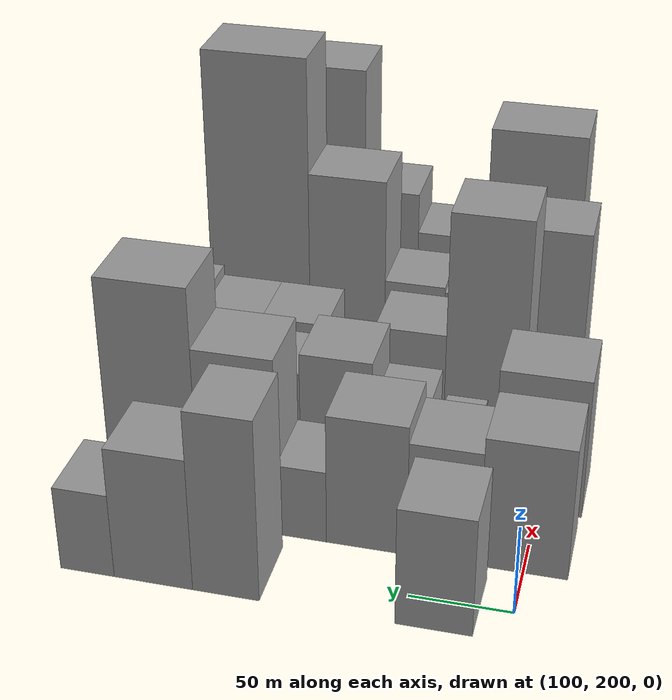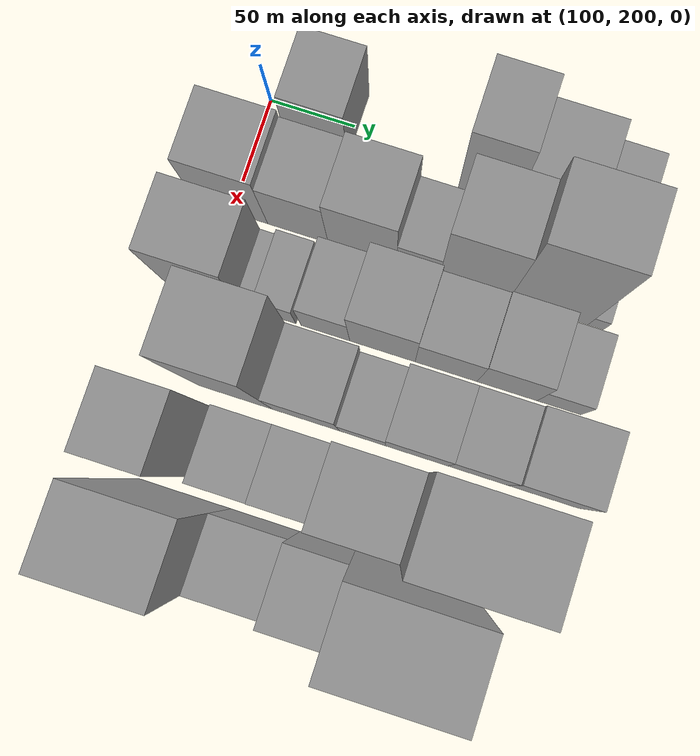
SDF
<sdf version="1.6">
 <world name="default">
  <model name="building_26">
   <static>1</static>
   <pose>100.0000 234.2118 0 0.000000 0.000000 0.000000</pose>
   <link name="link">
    <pose>0 0 33.00 0 0 0</pose>
    <collision name="collision"><geometry><box><size>40.0000 36.1460 66.0000</size></box></geometry></collision>
    <visual name="visual">
     <cast_shadows>0</cast_shadows>
     <geometry><box><size>40.0000 36.1460 66.0000</size></box></geometry>
     <material>
      <script>
       <uri>model://grey_wall/materials/scripts</uri>
       <uri>model://grey_wall/materials/textures</uri>
       <name>vrc/grey_wall</name>
      </script>
     </material>
    </visual>
   </link>
  </model>
  <model name="building_27">
   <static>1</static>
   <pose>100.0000 333.4423 0 0.000000 0.000000 0.000000</pose>
   <link name="link">
    <pose>0 0 51.00 0 0 0</pose>
    <collision name="collision"><geometry><box><size>40.0000 32.7717 102.0000</size></box></geometry></collision>
    <visual name="visual">
     <cast_shadows>0</cast_shadows>
     <geometry><box><size>40.0000 32.7717 102.0000</size></box></geometry>
     <material>
      <script>
       <uri>model://grey_wall/materials/scripts</uri>
       <uri>model://grey_wall/materials/textures</uri>
       <name>vrc/grey_wall</name>
      </script>
     </material>
    </visual>
   </link>
  </model>
  <model name="building_28">
   <static>1</static>
   <pose>100.0000 369.4874 0 0.000000 0.000000 0.000000</pose>
   <link name="link">
    <pose>0 0 37.50 0 0 0</pose>
    <collision name="collision"><geometry><box><size>40.0000 39.3185 75.0000</size></box></geometry></collision>
    <visual name="visual">
     <cast_shadows>0</cast_shadows>
     <geometry><box><size>40.0000 39.3185 75.0000</size></box></geometry>
     <material>
      <script>
       <uri>model://grey_wall/materials/scripts</uri>
       <uri>model://grey_wall/materials/textures</uri>
       <name>vrc/grey_wall</name>
      </script>
     </material>
    </visual>
   </link>
  </model>
  <model name="building_29">
   <static>1</static>
   <pose>100.0000 402.8128 0 0.000000 0.000000 0.000000</pose>
   <link name="link">
    <pose>0 0 24.00 0 0 0</pose>
    <collision name="collision"><geometry><box><size>40.0000 27.3323 48.0000</size></box></geometry></collision>
    <visual name="visual">
     <cast_shadows>0</cast_shadows>
     <geometry><box><size>40.0000 27.3323 48.0000</size></box></geometry>
     <material>
      <script>
       <uri>model://grey_wall/materials/scripts</uri>
       <uri>model://grey_wall/materials/textures</uri>
       <name>vrc/grey_wall</name>
      </script>
     </material>
    </visual>
   </link>
  </model>
  <model name="building_69">
   <static>1</static>
   <pose>149.0000 200.0035 0 0.000000 0.000000 0.000000</pose>
   <link name="link">
    <pose>0 0 37.50 0 0 0</pose>
    <collision name="collision"><geometry><box><size>40.0000 42.6982 75.0000</size></box></geometry></collision>
    <visual name="visual">
     <cast_shadows>0</cast_shadows>
     <geometry><box><size>40.0000 42.6982 75.0000</size></box></geometry>
     <material>
      <script>
       <uri>model://grey_wall/materials/scripts</uri>
       <uri>model://grey_wall/materials/textures</uri>
       <name>vrc/grey_wall</name>
      </script>
     </material>
    </visual>
   </link>
  </model>
  <model name="building_70">
   <static>1</static>
   <pose>149.0000 239.1743 0 0.000000 0.000000 0.000000</pose>
   <link name="link">
    <pose>0 0 33.00 0 0 0</pose>
    <collision name="collision"><geometry><box><size>40.0000 35.6436 66.0000</size></box></geometry></collision>
    <visual name="visual">
     <cast_shadows>0</cast_shadows>
     <geometry><box><size>40.0000 35.6436 66.0000</size></box></geometry>
     <material>
      <script>
       <uri>model://grey_wall/materials/scripts</uri>
       <uri>model://grey_wall/materials/textures</uri>
       <name>vrc/grey_wall</name>
      </script>
     </material>
    </visual>
   </link>
  </model>
  <model name="building_71">
   <static>1</static>
   <pose>149.0000 277.1224 0 0.000000 0.000000 0.000000</pose>
   <link name="link">
    <pose>0 0 37.50 0 0 0</pose>
    <collision name="collision"><geometry><box><size>40.0000 40.2526 75.0000</size></box></geometry></collision>
    <visual name="visual">
     <cast_shadows>0</cast_shadows>
     <geometry><box><size>40.0000 40.2526 75.0000</size></box></geometry>
     <material>
      <script>
       <uri>model://grey_wall/materials/scripts</uri>
       <uri>model://grey_wall/materials/textures</uri>
       <name>vrc/grey_wall</name>
      </script>
     </material>
    </visual>
   </link>
  </model>
  <model name="building_72">
   <static>1</static>
   <pose>149.0000 309.7122 0 0.000000 0.000000 0.000000</pose>
   <link name="link">
    <pose>0 0 21.00 0 0 0</pose>
    <collision name="collision"><geometry><box><size>40.0000 24.9270 42.0000</size></box></geometry></collision>
    <visual name="visual">
     <cast_shadows>0</cast_shadows>
     <geometry><box><size>40.0000 24.9270 42.0000</size></box></geometry>
     <material>
      <script>
       <uri>model://grey_wall/materials/scripts</uri>
       <uri>model://grey_wall/materials/textures</uri>
       <name>vrc/grey_wall</name>
      </script>
     </material>
    </visual>
   </link>
  </model>
  <model name="building_73">
   <static>1</static>
   <pose>149.0000 342.3925 0 0.000000 0.000000 0.000000</pose>
   <link name="link">
    <pose>0 0 51.00 0 0 0</pose>
    <collision name="collision"><geometry><box><size>40.0000 40.4336 102.0000</size></box></geometry></collision>
    <visual name="visual">
     <cast_shadows>0</cast_shadows>
     <geometry><box><size>40.0000 40.4336 102.0000</size></box></geometry>
     <material>
      <script>
       <uri>model://grey_wall/materials/scripts</uri>
       <uri>model://grey_wall/materials/textures</uri>
       <name>vrc/grey_wall</name>
      </script>
     </material>
    </visual>
   </link>
  </model>
  <model name="building_74">
   <static>1</static>
   <pose>149.0000 385.5866 0 0.000000 0.000000 0.000000</pose>
   <link name="link">
    <pose>0 0 67.50 0 0 0</pose>
    <collision name="collision"><geometry><box><size>40.0000 45.9545 135.0000</size></box></geometry></collision>
    <visual name="visual">
     <cast_shadows>0</cast_shadows>
     <geometry><box><size>40.0000 45.9545 135.0000</size></box></geometry>
     <material>
      <script>
       <uri>model://grey_wall/materials/scripts</uri>
       <uri>model://grey_wall/materials/textures</uri>
       <name>vrc/grey_wall</name>
      </script>
     </material>
    </visual>
   </link>
  </model>
  <model name="building_75">
   <static>1</static>
   <pose>149.0000 413.0706 0 0.000000 0.000000 0.000000</pose>
   <link name="link">
    <pose>0 0 10.50 0 0 0</pose>
    <collision name="collision"><geometry><box><size>40.0000 9.0136 21.0000</size></box></geometry></collision>
    <visual name="visual">
     <cast_shadows>0</cast_shadows>
     <geometry><box><size>40.0000 9.0136 21.0000</size></box></geometry>
     <material>
      <script>
       <uri>model://grey_wall/materials/scripts</uri>
       <uri>model://grey_wall/materials/textures</uri>
       <name>vrc/grey_wall</name>
      </script>
     </material>
    </visual>
   </link>
  </model>
  <model name="building_114">
   <static>1</static>
   <pose>198.0000 200.1584 0 0.000000 0.000000 0.000000</pose>
   <link name="link">
    <pose>0 0 40.50 0 0 0</pose>
    <collision name="collision"><geometry><box><size>40.0000 45.1480 81.0000</size></box></geometry></collision>
    <visual name="visual">
     <cast_shadows>0</cast_shadows>
     <geometry><box><size>40.0000 45.1480 81.0000</size></box></geometry>
     <material>
      <script>
       <uri>model://grey_wall/materials/scripts</uri>
       <uri>model://grey_wall/materials/textures</uri>
       <name>vrc/grey_wall</name>
      </script>
     </material>
    </visual>
   </link>
  </model>
  <model name="building_115">
   <static>1</static>
   <pose>198.0000 227.9738 0 0.000000 0.000000 0.000000</pose>
   <link name="link">
    <pose>0 0 12.00 0 0 0</pose>
    <collision name="collision"><geometry><box><size>40.0000 10.4829 24.0000</size></box></geometry></collision>
    <visual name="visual">
     <cast_shadows>0</cast_shadows>
     <geometry><box><size>40.0000 10.4829 24.0000</size></box></geometry>
     <material>
      <script>
       <uri>model://grey_wall/materials/scripts</uri>
       <uri>model://grey_wall/materials/textures</uri>
       <name>vrc/grey_wall</name>
      </script>
     </material>
    </visual>
   </link>
  </model>
  <model name="building_116">
   <static>1</static>
   <pose>198.0000 243.8494 0 0.000000 0.000000 0.000000</pose>
   <link name="link">
    <pose>0 0 18.00 0 0 0</pose>
    <collision name="collision"><geometry><box><size>40.0000 21.2684 36.0000</size></box></geometry></collision>
    <visual name="visual">
     <cast_shadows>0</cast_shadows>
     <geometry><box><size>40.0000 21.2684 36.0000</size></box></geometry>
     <material>
      <script>
       <uri>model://grey_wall/materials/scripts</uri>
       <uri>model://grey_wall/materials/textures</uri>
       <name>vrc/grey_wall</name>
      </script>
     </material>
    </visual>
   </link>
  </model>
  <model name="building_117">
   <static>1</static>
   <pose>198.0000 271.6576 0 0.000000 0.000000 0.000000</pose>
   <link name="link">
    <pose>0 0 25.50 0 0 0</pose>
    <collision name="collision"><geometry><box><size>40.0000 28.3479 51.0000</size></box></geometry></collision>
    <visual name="visual">
     <cast_shadows>0</cast_shadows>
     <geometry><box><size>40.0000 28.3479 51.0000</size></box></geometry>
     <material>
      <script>
       <uri>model://grey_wall/materials/scripts</uri>
       <uri>model://grey_wall/materials/textures</uri>
       <name>vrc/grey_wall</name>
      </script>
     </material>
    </visual>
   </link>
  </model>
  <model name="building_118">
   <static>1</static>
   <pose>198.0000 304.7454 0 0.000000 0.000000 0.000000</pose>
   <link name="link">
    <pose>0 0 37.50 0 0 0</pose>
    <collision name="collision"><geometry><box><size>40.0000 37.8278 75.0000</size></box></geometry></collision>
    <visual name="visual">
     <cast_shadows>0</cast_shadows>
     <geometry><box><size>40.0000 37.8278 75.0000</size></box></geometry>
     <material>
      <script>
       <uri>model://grey_wall/materials/scripts</uri>
       <uri>model://grey_wall/materials/textures</uri>
       <name>vrc/grey_wall</name>
      </script>
     </material>
    </visual>
   </link>
  </model>
  <model name="building_119">
   <static>1</static>
   <pose>198.0000 341.5169 0 0.000000 0.000000 0.000000</pose>
   <link name="link">
    <pose>0 0 31.50 0 0 0</pose>
    <collision name="collision"><geometry><box><size>40.0000 35.7151 63.0000</size></box></geometry></collision>
    <visual name="visual">
     <cast_shadows>0</cast_shadows>
     <geometry><box><size>40.0000 35.7151 63.0000</size></box></geometry>
     <material>
      <script>
       <uri>model://grey_wall/materials/scripts</uri>
       <uri>model://grey_wall/materials/textures</uri>
       <name>vrc/grey_wall</name>
      </script>
     </material>
    </visual>
   </link>
  </model>
  <model name="building_120">
   <static>1</static>
   <pose>198.0000 376.6212 0 0.000000 0.000000 0.000000</pose>
   <link name="link">
    <pose>0 0 33.00 0 0 0</pose>
    <collision name="collision"><geometry><box><size>40.0000 34.4935 66.0000</size></box></geometry></collision>
    <visual name="visual">
     <cast_shadows>0</cast_shadows>
     <geometry><box><size>40.0000 34.4935 66.0000</size></box></geometry>
     <material>
      <script>
       <uri>model://grey_wall/materials/scripts</uri>
       <uri>model://grey_wall/materials/textures</uri>
       <name>vrc/grey_wall</name>
      </script>
     </material>
    </visual>
   </link>
  </model>
  <model name="building_121">
   <static>1</static>
   <pose>198.0000 406.4166 0 0.000000 0.000000 0.000000</pose>
   <link name="link">
    <pose>0 0 21.00 0 0 0</pose>
    <collision name="collision"><geometry><box><size>40.0000 25.0973 42.0000</size></box></geometry></collision>
    <visual name="visual">
     <cast_shadows>0</cast_shadows>
     <geometry><box><size>40.0000 25.0973 42.0000</size></box></geometry>
     <material>
      <script>
       <uri>model://grey_wall/materials/scripts</uri>
       <uri>model://grey_wall/materials/textures</uri>
       <name>vrc/grey_wall</name>
      </script>
     </material>
    </visual>
   </link>
  </model>
  <model name="building_165">
   <static>1</static>
   <pose>247.0000 236.4533 0 0.000000 0.000000 0.000000</pose>
   <link name="link">
    <pose>0 0 69.00 0 0 0</pose>
    <collision name="collision"><geometry><box><size>40.0000 42.4601 138.0000</size></box></geometry></collision>
    <visual name="visual">
     <cast_shadows>0</cast_shadows>
     <geometry><box><size>40.0000 42.4601 138.0000</size></box></geometry>
     <material>
      <script>
       <uri>model://grey_wall/materials/scripts</uri>
       <uri>model://grey_wall/materials/textures</uri>
       <name>vrc/grey_wall</name>
      </script>
     </material>
    </visual>
   </link>
  </model>
  <model name="building_166">
   <static>1</static>
   <pose>247.0000 276.8266 0 0.000000 0.000000 0.000000</pose>
   <link name="link">
    <pose>0 0 33.00 0 0 0</pose>
    <collision name="collision"><geometry><box><size>40.0000 38.2865 66.0000</size></box></geometry></collision>
    <visual name="visual">
     <cast_shadows>0</cast_shadows>
     <geometry><box><size>40.0000 38.2865 66.0000</size></box></geometry>
     <material>
      <script>
       <uri>model://grey_wall/materials/scripts</uri>
       <uri>model://grey_wall/materials/textures</uri>
       <name>vrc/grey_wall</name>
      </script>
     </material>
    </visual>
   </link>
  </model>
  <model name="building_167">
   <static>1</static>
   <pose>247.0000 309.1084 0 0.000000 0.000000 0.000000</pose>
   <link name="link">
    <pose>0 0 22.50 0 0 0</pose>
    <collision name="collision"><geometry><box><size>40.0000 26.2771 45.0000</size></box></geometry></collision>
    <visual name="visual">
     <cast_shadows>0</cast_shadows>
     <geometry><box><size>40.0000 26.2771 45.0000</size></box></geometry>
     <material>
      <script>
       <uri>model://grey_wall/materials/scripts</uri>
       <uri>model://grey_wall/materials/textures</uri>
       <name>vrc/grey_wall</name>
      </script>
     </material>
    </visual>
   </link>
  </model>
  <model name="building_168">
   <static>1</static>
   <pose>247.0000 340.0244 0 0.000000 0.000000 0.000000</pose>
   <link name="link">
    <pose>0 0 31.50 0 0 0</pose>
    <collision name="collision"><geometry><box><size>40.0000 35.5550 63.0000</size></box></geometry></collision>
    <visual name="visual">
     <cast_shadows>0</cast_shadows>
     <geometry><box><size>40.0000 35.5550 63.0000</size></box></geometry>
     <material>
      <script>
       <uri>model://grey_wall/materials/scripts</uri>
       <uri>model://grey_wall/materials/textures</uri>
       <name>vrc/grey_wall</name>
      </script>
     </material>
    </visual>
   </link>
  </model>
  <model name="building_169">
   <static>1</static>
   <pose>247.0000 374.5164 0 0.000000 0.000000 0.000000</pose>
   <link name="link">
    <pose>0 0 31.50 0 0 0</pose>
    <collision name="collision"><geometry><box><size>40.0000 33.4291 63.0000</size></box></geometry></collision>
    <visual name="visual">
     <cast_shadows>0</cast_shadows>
     <geometry><box><size>40.0000 33.4291 63.0000</size></box></geometry>
     <material>
      <script>
       <uri>model://grey_wall/materials/scripts</uri>
       <uri>model://grey_wall/materials/textures</uri>
       <name>vrc/grey_wall</name>
      </script>
     </material>
    </visual>
   </link>
  </model>
  <model name="building_170">
   <static>1</static>
   <pose>247.0000 411.8291 0 0.000000 0.000000 0.000000</pose>
   <link name="link">
    <pose>0 0 34.50 0 0 0</pose>
    <collision name="collision"><geometry><box><size>40.0000 41.1961 69.0000</size></box></geometry></collision>
    <visual name="visual">
     <cast_shadows>0</cast_shadows>
     <geometry><box><size>40.0000 41.1961 69.0000</size></box></geometry>
     <material>
      <script>
       <uri>model://grey_wall/materials/scripts</uri>
       <uri>model://grey_wall/materials/textures</uri>
       <name>vrc/grey_wall</name>
      </script>
     </material>
    </visual>
   </link>
  </model>
  <model name="building_215">
   <static>1</static>
   <pose>296.0000 207.6858 0 0.000000 0.000000 0.000000</pose>
   <link name="link">
    <pose>0 0 54.00 0 0 0</pose>
    <collision name="collision"><geometry><box><size>40.0000 35.3415 108.0000</size></box></geometry></collision>
    <visual name="visual">
     <cast_shadows>0</cast_shadows>
     <geometry><box><size>40.0000 35.3415 108.0000</size></box></geometry>
     <material>
      <script>
       <uri>model://grey_wall/materials/scripts</uri>
       <uri>model://grey_wall/materials/textures</uri>
       <name>vrc/grey_wall</name>
      </script>
     </material>
    </visual>
   </link>
  </model>
  <model name="building_216">
   <static>1</static>
   <pose>296.0000 251.4775 0 0.000000 0.000000 0.000000</pose>
   <link name="link">
    <pose>0 0 31.50 0 0 0</pose>
    <collision name="collision"><geometry><box><size>40.0000 32.2420 63.0000</size></box></geometry></collision>
    <visual name="visual">
     <cast_shadows>0</cast_shadows>
     <geometry><box><size>40.0000 32.2420 63.0000</size></box></geometry>
     <material>
      <script>
       <uri>model://grey_wall/materials/scripts</uri>
       <uri>model://grey_wall/materials/textures</uri>
       <name>vrc/grey_wall</name>
      </script>
     </material>
    </visual>
   </link>
  </model>
  <model name="building_217">
   <static>1</static>
   <pose>296.0000 284.4163 0 0.000000 0.000000 0.000000</pose>
   <link name="link">
    <pose>0 0 33.00 0 0 0</pose>
    <collision name="collision"><geometry><box><size>40.0000 33.6357 66.0000</size></box></geometry></collision>
    <visual name="visual">
     <cast_shadows>0</cast_shadows>
     <geometry><box><size>40.0000 33.6357 66.0000</size></box></geometry>
     <material>
      <script>
       <uri>model://grey_wall/materials/scripts</uri>
       <uri>model://grey_wall/materials/textures</uri>
       <name>vrc/grey_wall</name>
      </script>
     </material>
    </visual>
   </link>
  </model>
  <model name="building_218">
   <static>1</static>
   <pose>296.0000 322.8624 0 0.000000 0.000000 0.000000</pose>
   <link name="link">
    <pose>0 0 63.00 0 0 0</pose>
    <collision name="collision"><geometry><box><size>40.0000 43.2566 126.0000</size></box></geometry></collision>
    <visual name="visual">
     <cast_shadows>0</cast_shadows>
     <geometry><box><size>40.0000 43.2566 126.0000</size></box></geometry>
     <material>
      <script>
       <uri>model://grey_wall/materials/scripts</uri>
       <uri>model://grey_wall/materials/textures</uri>
       <name>vrc/grey_wall</name>
      </script>
     </material>
    </visual>
   </link>
  </model>
  <model name="building_219">
   <static>1</static>
   <pose>296.0000 373.3120 0 0.000000 0.000000 0.000000</pose>
   <link name="link">
    <pose>0 0 96.00 0 0 0</pose>
    <collision name="collision"><geometry><box><size>40.0000 57.6426 192.0000</size></box></geometry></collision>
    <visual name="visual">
     <cast_shadows>0</cast_shadows>
     <geometry><box><size>40.0000 57.6426 192.0000</size></box></geometry>
     <material>
      <script>
       <uri>model://grey_wall/materials/scripts</uri>
       <uri>model://grey_wall/materials/textures</uri>
       <name>vrc/grey_wall</name>
      </script>
     </material>
    </visual>
   </link>
  </model>
  <model name="building_263">
   <static>1</static>
   <pose>345.0000 226.4981 0 0.000000 0.000000 0.000000</pose>
   <link name="link">
    <pose>0 0 70.50 0 0 0</pose>
    <collision name="collision"><geometry><box><size>40.0000 53.2749 141.0000</size></box></geometry></collision>
    <visual name="visual">
     <cast_shadows>0</cast_shadows>
     <geometry><box><size>40.0000 53.2749 141.0000</size></box></geometry>
     <material>
      <script>
       <uri>model://grey_wall/materials/scripts</uri>
       <uri>model://grey_wall/materials/textures</uri>
       <name>vrc/grey_wall</name>
      </script>
     </material>
    </visual>
   </link>
  </model>
  <model name="building_264">
   <static>1</static>
   <pose>345.0000 272.9177 0 0.000000 0.000000 0.000000</pose>
   <link name="link">
    <pose>0 0 36.00 0 0 0</pose>
    <collision name="collision"><geometry><box><size>40.0000 39.5644 72.0000</size></box></geometry></collision>
    <visual name="visual">
     <cast_shadows>0</cast_shadows>
     <geometry><box><size>40.0000 39.5644 72.0000</size></box></geometry>
     <material>
      <script>
       <uri>model://grey_wall/materials/scripts</uri>
       <uri>model://grey_wall/materials/textures</uri>
       <name>vrc/grey_wall</name>
      </script>
     </material>
    </visual>
   </link>
  </model>
  <model name="building_265">
   <static>1</static>
   <pose>345.0000 308.4312 0 0.000000 0.000000 0.000000</pose>
   <link name="link">
    <pose>0 0 48.00 0 0 0</pose>
    <collision name="collision"><geometry><box><size>40.0000 31.4625 96.0000</size></box></geometry></collision>
    <visual name="visual">
     <cast_shadows>0</cast_shadows>
     <geometry><box><size>40.0000 31.4625 96.0000</size></box></geometry>
     <material>
      <script>
       <uri>model://grey_wall/materials/scripts</uri>
       <uri>model://grey_wall/materials/textures</uri>
       <name>vrc/grey_wall</name>
      </script>
     </material>
    </visual>
   </link>
  </model>
  <model name="building_266">
   <static>1</static>
   <pose>345.0000 355.6140 0 0.000000 0.000000 0.000000</pose>
   <link name="link">
    <pose>0 0 84.00 0 0 0</pose>
    <collision name="collision"><geometry><box><size>40.0000 62.9030 168.0000</size></box></geometry></collision>
    <visual name="visual">
     <cast_shadows>0</cast_shadows>
     <geometry><box><size>40.0000 62.9030 168.0000</size></box></geometry>
     <material>
      <script>
       <uri>model://grey_wall/materials/scripts</uri>
       <uri>model://grey_wall/materials/textures</uri>
       <name>vrc/grey_wall</name>
      </script>
     </material>
    </visual>
   </link>
  </model>
  <model name="building_267">
   <static>1</static>
   <pose>345.0000 391.2500 0 0.000000 0.000000 0.000000</pose>
   <link name="link">
    <pose>0 0 9.00 0 0 0</pose>
    <collision name="collision"><geometry><box><size>40.0000 8.3689 18.0000</size></box></geometry></collision>
    <visual name="visual">
     <cast_shadows>0</cast_shadows>
     <geometry><box><size>40.0000 8.3689 18.0000</size></box></geometry>
     <material>
      <script>
       <uri>model://grey_wall/materials/scripts</uri>
       <uri>model://grey_wall/materials/textures</uri>
       <name>vrc/grey_wall</name>
      </script>
     </material>
    </visual>
   </link>
  </model>
 </world>
</sdf>
